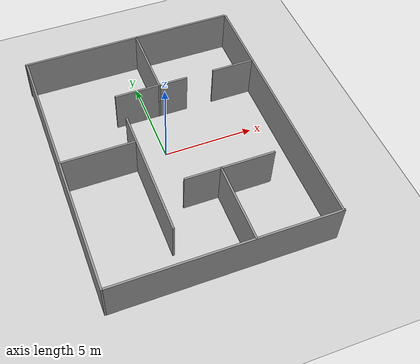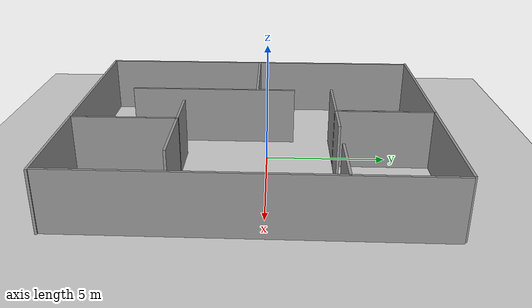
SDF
<sdf version="1.4">
 <world name="default">
  <light name="sun" type="directional">
   <pose>0 0 10 0 -0 0</pose>
   <diffuse>0.8 0.8 0.8 1</diffuse>
   <specular>0.2 0.2 0.2 1</specular>
   <attenuation>
    <range>1000</range>
    <constant>0.9</constant>
    <linear>0.01</linear>
    <quadratic>0.001</quadratic>
   </attenuation>
   <direction>-0.5 0.1 -0.9</direction>
   <spot><inner_angle>0</inner_angle><outer_angle>0</outer_angle><falloff>0</falloff></spot>
  </light>
  <model name="ground_plane">
   <static>1</static>
   <link name="link">
    <collision name="collision">
     <geometry><plane><normal>0 0 1</normal><size>100 100</size></plane></geometry>
     <surface>
      <contact><collide_bitmask>65535</collide_bitmask></contact>
      <friction><ode><mu>100</mu><mu2>50</mu2></ode></friction>
     </surface>
    </collision>
    <visual name="visual">
     <cast_shadows>0</cast_shadows>
     <geometry><plane><normal>0 0 1</normal><size>100 100</size></plane></geometry>
     <material>
      <script><uri>file://media/materials/scripts/gazebo.material</uri><name>Gazebo/Grey</name></script>
     </material>
    </visual>
   </link>
  </model>
  <gravity>0 0 -9.8</gravity>
  <magnetic_field>6e-06 2.3e-05 -4.2e-05</magnetic_field>
  <atmosphere type="adiabatic"/>
  <physics type="ode">
   <max_step_size>0.001</max_step_size>
   <real_time_factor>1</real_time_factor>
   <real_time_update_rate>1000</real_time_update_rate>
  </physics>
  <scene><ambient>0.4 0.4 0.4 1</ambient><background>0.7 0.7 0.7 1</background><shadows>1</shadows></scene>
  <spherical_coordinates>
   <surface_model>EARTH_WGS84</surface_model>
   <latitude_deg>0</latitude_deg>
   <longitude_deg>0</longitude_deg>
   <elevation>0</elevation>
   <heading_deg>0</heading_deg>
  </spherical_coordinates>
  <model name="House_01">
   <link name="link_1">
    <inertial>
     <mass>1.49681</mass>
     <inertia><ixx>0.780838</ixx><ixy>0</ixy><ixz>0</ixz><iyy>18.6651</iyy><iyz>0</iyz><izz>17.8868</izz></inertia>
    </inertial>
    <pose>0.027802 8.05572 1.25 0 -0 0</pose>
    <visual name="visual">
     <geometry><box><size>11.9745 0.1 2.5</size></box></geometry>
     <material>
      <lighting>1</lighting>
      <script><uri>file://media/materials/scripts/gazebo.material</uri><name>Gazebo/Grey</name></script>
      <shader type="pixel"><normal_map>__default__</normal_map></shader>
      <ambient>0.3 0.3 0.3 1</ambient>
      <diffuse>0.7 0.7 0.7 1</diffuse>
      <specular>0.01 0.01 0.01 1</specular>
      <emissive>0 0 0 1</emissive>
     </material>
    </visual>
    <collision name="collision">
     <geometry><box><size>11.9745 0.1 2.5</size></box></geometry>
     <surface>
      <friction>
       <ode><mu>1</mu><mu2>1</mu2><fdir1>0 0 0</fdir1><slip1>0</slip1><slip2>0</slip2></ode>
       <torsional>
        <coefficient>1</coefficient>
        <patch_radius>0</patch_radius>
        <surface_radius>0</surface_radius>
        <use_patch_radius>1</use_patch_radius>
        <ode><slip>0</slip></ode>
       </torsional>
      </friction>
      <bounce><restitution_coefficient>0</restitution_coefficient><threshold>1e+06</threshold></bounce>
      <contact>
       <collide_without_contact>0</collide_without_contact>
       <collide_without_contact_bitmask>1</collide_without_contact_bitmask>
       <collide_bitmask>1</collide_bitmask>
       <ode>
        <soft_cfm>0</soft_cfm>
        <soft_erp>0.2</soft_erp>
        <kp>1e+13</kp>
        <kd>1</kd>
        <max_vel>0.01</max_vel>
        <min_depth>0</min_depth>
       </ode>
       <bullet>
        <split_impulse>1</split_impulse>
        <split_impulse_penetration_threshold>-0.01</split_impulse_penetration_threshold>
        <soft_cfm>0</soft_cfm>
        <soft_erp>0.2</soft_erp>
        <kp>1e+13</kp>
        <kd>1</kd>
       </bullet>
      </contact>
     </surface>
    </collision>
   </link>
   <link name="link_1_clone">
    <inertial>
     <mass>0.514649</mass>
     <inertia>
      <ixx>0.268475</ixx>
      <ixy>0</ixy>
      <ixz>0</ixz>
      <iyy>0.99504</iyy>
      <iyz>0</iyz>
      <izz>0.727423</izz>
     </inertia>
    </inertial>
    <pose>0.058969 4.07499 1.25 0 -0 0</pose>
    <visual name="visual">
     <geometry><box><size>4.11719 0.1 2.5</size></box></geometry>
     <material>
      <lighting>1</lighting>
      <script><uri>file://media/materials/scripts/gazebo.material</uri><name>Gazebo/Grey</name></script>
      <shader type="pixel"><normal_map>__default__</normal_map></shader>
      <ambient>0.3 0.3 0.3 1</ambient>
      <diffuse>0.7 0.7 0.7 1</diffuse>
      <specular>0.01 0.01 0.01 1</specular>
      <emissive>0 0 0 1</emissive>
     </material>
    </visual>
    <collision name="collision">
     <geometry><box><size>4.11719 0.1 2.5</size></box></geometry>
     <surface>
      <friction>
       <ode><mu>1</mu><mu2>1</mu2><fdir1>0 0 0</fdir1><slip1>0</slip1><slip2>0</slip2></ode>
       <torsional>
        <coefficient>1</coefficient>
        <patch_radius>0</patch_radius>
        <surface_radius>0</surface_radius>
        <use_patch_radius>1</use_patch_radius>
        <ode><slip>0</slip></ode>
       </torsional>
      </friction>
      <bounce><restitution_coefficient>0</restitution_coefficient><threshold>1e+06</threshold></bounce>
      <contact>
       <collide_without_contact>0</collide_without_contact>
       <collide_without_contact_bitmask>1</collide_without_contact_bitmask>
       <collide_bitmask>1</collide_bitmask>
       <ode>
        <soft_cfm>0</soft_cfm>
        <soft_erp>0.2</soft_erp>
        <kp>1e+13</kp>
        <kd>1</kd>
        <max_vel>0.01</max_vel>
        <min_depth>0</min_depth>
       </ode>
       <bullet>
        <split_impulse>1</split_impulse>
        <split_impulse_penetration_threshold>-0.01</split_impulse_penetration_threshold>
        <soft_cfm>0</soft_cfm>
        <soft_erp>0.2</soft_erp>
        <kp>1e+13</kp>
        <kd>1</kd>
       </bullet>
      </contact>
     </surface>
    </collision>
   </link>
   <link name="link_1_clone_0">
    <inertial>
     <mass>1.49681</mass>
     <inertia><ixx>0.780838</ixx><ixy>0</ixy><ixz>0</ixz><iyy>18.6651</iyy><iyz>0</iyz><izz>17.8868</izz></inertia>
    </inertial>
    <pose>0.067238 -6.52906 1.25 0 -0 0</pose>
    <visual name="visual">
     <geometry><box><size>11.9745 0.1 2.5</size></box></geometry>
     <material>
      <lighting>1</lighting>
      <script><uri>file://media/materials/scripts/gazebo.material</uri><name>Gazebo/Grey</name></script>
      <shader type="pixel"><normal_map>__default__</normal_map></shader>
      <ambient>0.3 0.3 0.3 1</ambient>
      <diffuse>0.7 0.7 0.7 1</diffuse>
      <specular>0.01 0.01 0.01 1</specular>
      <emissive>0 0 0 1</emissive>
     </material>
    </visual>
    <collision name="collision">
     <geometry><box><size>11.9745 0.1 2.5</size></box></geometry>
     <surface>
      <friction>
       <ode><mu>1</mu><mu2>1</mu2><fdir1>0 0 0</fdir1><slip1>0</slip1><slip2>0</slip2></ode>
       <torsional>
        <coefficient>1</coefficient>
        <patch_radius>0</patch_radius>
        <surface_radius>0</surface_radius>
        <use_patch_radius>1</use_patch_radius>
        <ode><slip>0</slip></ode>
       </torsional>
      </friction>
      <bounce><restitution_coefficient>0</restitution_coefficient><threshold>1e+06</threshold></bounce>
      <contact>
       <collide_without_contact>0</collide_without_contact>
       <collide_without_contact_bitmask>1</collide_without_contact_bitmask>
       <collide_bitmask>1</collide_bitmask>
       <ode>
        <soft_cfm>0</soft_cfm>
        <soft_erp>0.2</soft_erp>
        <kp>1e+13</kp>
        <kd>1</kd>
        <max_vel>0.01</max_vel>
        <min_depth>0</min_depth>
       </ode>
       <bullet>
        <split_impulse>1</split_impulse>
        <split_impulse_penetration_threshold>-0.01</split_impulse_penetration_threshold>
        <soft_cfm>0</soft_cfm>
        <soft_erp>0.2</soft_erp>
        <kp>1e+13</kp>
        <kd>1</kd>
       </bullet>
      </contact>
     </surface>
    </collision>
   </link>
   <link name="link_1_clone_clone">
    <inertial>
     <mass>0.509253</mass>
     <inertia>
      <ixx>0.26566</ixx>
      <ixy>0</ixy>
      <ixz>0</ixz>
      <iyy>0.969603</iyy>
      <iyz>0</iyz>
      <izz>0.704791</izz>
     </inertia>
    </inertial>
    <pose>0.518645 6.05664 1.25 0 -0 1.5641</pose>
    <visual name="visual">
     <geometry><box><size>4.07402 0.1 2.5</size></box></geometry>
     <material>
      <lighting>1</lighting>
      <script><uri>file://media/materials/scripts/gazebo.material</uri><name>Gazebo/Grey</name></script>
      <shader type="pixel"><normal_map>__default__</normal_map></shader>
      <ambient>0.3 0.3 0.3 1</ambient>
      <diffuse>0.7 0.7 0.7 1</diffuse>
      <specular>0.01 0.01 0.01 1</specular>
      <emissive>0 0 0 1</emissive>
     </material>
    </visual>
    <collision name="collision">
     <geometry><box><size>4.07402 0.1 2.5</size></box></geometry>
     <surface>
      <friction>
       <ode><mu>1</mu><mu2>1</mu2><fdir1>0 0 0</fdir1><slip1>0</slip1><slip2>0</slip2></ode>
       <torsional>
        <coefficient>1</coefficient>
        <patch_radius>0</patch_radius>
        <surface_radius>0</surface_radius>
        <use_patch_radius>1</use_patch_radius>
        <ode><slip>0</slip></ode>
       </torsional>
      </friction>
      <bounce><restitution_coefficient>0</restitution_coefficient><threshold>1e+06</threshold></bounce>
      <contact>
       <collide_without_contact>0</collide_without_contact>
       <collide_without_contact_bitmask>1</collide_without_contact_bitmask>
       <collide_bitmask>1</collide_bitmask>
       <ode>
        <soft_cfm>0</soft_cfm>
        <soft_erp>0.2</soft_erp>
        <kp>1e+13</kp>
        <kd>1</kd>
        <max_vel>0.01</max_vel>
        <min_depth>0</min_depth>
       </ode>
       <bullet>
        <split_impulse>1</split_impulse>
        <split_impulse_penetration_threshold>-0.01</split_impulse_penetration_threshold>
        <soft_cfm>0</soft_cfm>
        <soft_erp>0.2</soft_erp>
        <kp>1e+13</kp>
        <kd>1</kd>
       </bullet>
      </contact>
     </surface>
    </collision>
   </link>
   <link name="link_1_clone_clone_0">
    <inertial>
     <mass>0.514649</mass>
     <inertia>
      <ixx>0.268475</ixx>
      <ixy>0</ixy>
      <ixz>0</ixz>
      <iyy>0.99504</iyy>
      <iyz>0</iyz>
      <izz>0.727423</izz>
     </inertia>
    </inertial>
    <pose>-3.8974 0.806669 1.25 0 -0 0</pose>
    <visual name="visual">
     <geometry><box><size>4.11719 0.1 2.5</size></box></geometry>
     <material>
      <lighting>1</lighting>
      <script><uri>file://media/materials/scripts/gazebo.material</uri><name>Gazebo/Grey</name></script>
      <shader type="pixel"><normal_map>__default__</normal_map></shader>
      <ambient>0.3 0.3 0.3 1</ambient>
      <diffuse>0.7 0.7 0.7 1</diffuse>
      <specular>0.01 0.01 0.01 1</specular>
      <emissive>0 0 0 1</emissive>
     </material>
    </visual>
    <collision name="collision">
     <geometry><box><size>4.11719 0.1 2.5</size></box></geometry>
     <surface>
      <friction>
       <ode><mu>1</mu><mu2>1</mu2><fdir1>0 0 0</fdir1><slip1>0</slip1><slip2>0</slip2></ode>
       <torsional>
        <coefficient>1</coefficient>
        <patch_radius>0</patch_radius>
        <surface_radius>0</surface_radius>
        <use_patch_radius>1</use_patch_radius>
        <ode><slip>0</slip></ode>
       </torsional>
      </friction>
      <bounce><restitution_coefficient>0</restitution_coefficient><threshold>1e+06</threshold></bounce>
      <contact>
       <collide_without_contact>0</collide_without_contact>
       <collide_without_contact_bitmask>1</collide_without_contact_bitmask>
       <collide_bitmask>1</collide_bitmask>
       <ode>
        <soft_cfm>0</soft_cfm>
        <soft_erp>0.2</soft_erp>
        <kp>1e+13</kp>
        <kd>1</kd>
        <max_vel>0.01</max_vel>
        <min_depth>0</min_depth>
       </ode>
       <bullet>
        <split_impulse>1</split_impulse>
        <split_impulse_penetration_threshold>-0.01</split_impulse_penetration_threshold>
        <soft_cfm>0</soft_cfm>
        <soft_erp>0.2</soft_erp>
        <kp>1e+13</kp>
        <kd>1</kd>
       </bullet>
      </contact>
     </surface>
    </collision>
   </link>
   <link name="link_1_clone_clone_2">
    <inertial>
     <mass>0.304237</mass>
     <inertia><ixx>0.15871</ixx><ixy>0</ixy><ixz>0</ixz><iyy>0.308643</iyy><iyz>0</iyz><izz>0.15044</izz></inertia>
    </inertial>
    <pose>4.86186 4.07451 1.25 0 -0 0</pose>
    <visual name="visual">
     <geometry><box><size>2.43389 0.1 2.5</size></box></geometry>
     <material>
      <lighting>1</lighting>
      <script><uri>file://media/materials/scripts/gazebo.material</uri><name>Gazebo/Grey</name></script>
      <shader type="pixel"><normal_map>__default__</normal_map></shader>
      <ambient>0.3 0.3 0.3 1</ambient>
      <diffuse>0.7 0.7 0.7 1</diffuse>
      <specular>0.01 0.01 0.01 1</specular>
      <emissive>0 0 0 1</emissive>
     </material>
    </visual>
    <collision name="collision">
     <geometry><box><size>2.43389 0.1 2.5</size></box></geometry>
     <surface>
      <friction>
       <ode><mu>1</mu><mu2>1</mu2><fdir1>0 0 0</fdir1><slip1>0</slip1><slip2>0</slip2></ode>
       <torsional>
        <coefficient>1</coefficient>
        <patch_radius>0</patch_radius>
        <surface_radius>0</surface_radius>
        <use_patch_radius>1</use_patch_radius>
        <ode><slip>0</slip></ode>
       </torsional>
      </friction>
      <bounce><restitution_coefficient>0</restitution_coefficient><threshold>1e+06</threshold></bounce>
      <contact>
       <collide_without_contact>0</collide_without_contact>
       <collide_without_contact_bitmask>1</collide_without_contact_bitmask>
       <collide_bitmask>1</collide_bitmask>
       <ode>
        <soft_cfm>0</soft_cfm>
        <soft_erp>0.2</soft_erp>
        <kp>1e+13</kp>
        <kd>1</kd>
        <max_vel>0.01</max_vel>
        <min_depth>0</min_depth>
       </ode>
       <bullet>
        <split_impulse>1</split_impulse>
        <split_impulse_penetration_threshold>-0.01</split_impulse_penetration_threshold>
        <soft_cfm>0</soft_cfm>
        <soft_erp>0.2</soft_erp>
        <kp>1e+13</kp>
        <kd>1</kd>
       </bullet>
      </contact>
     </surface>
    </collision>
   </link>
   <link name="link_1_clone_clone_3">
    <inertial>
     <mass>0.613294</mass>
     <inertia><ixx>0.319935</ixx><ixy>0</ixy><ixz>0</ixz><iyy>1.54971</iyy><iyz>0</iyz><izz>1.23079</izz></inertia>
    </inertial>
    <pose>1.97764 -2.24987 1.25 0 -0 0</pose>
    <visual name="visual">
     <geometry><box><size>4.90635 0.1 2.5</size></box></geometry>
     <material>
      <lighting>1</lighting>
      <script><uri>file://media/materials/scripts/gazebo.material</uri><name>Gazebo/Grey</name></script>
      <shader type="pixel"><normal_map>__default__</normal_map></shader>
      <ambient>0.3 0.3 0.3 1</ambient>
      <diffuse>0.7 0.7 0.7 1</diffuse>
      <specular>0.01 0.01 0.01 1</specular>
      <emissive>0 0 0 1</emissive>
     </material>
    </visual>
    <collision name="collision">
     <geometry><box><size>4.90635 0.1 2.5</size></box></geometry>
     <surface>
      <friction>
       <ode><mu>1</mu><mu2>1</mu2><fdir1>0 0 0</fdir1><slip1>0</slip1><slip2>0</slip2></ode>
       <torsional>
        <coefficient>1</coefficient>
        <patch_radius>0</patch_radius>
        <surface_radius>0</surface_radius>
        <use_patch_radius>1</use_patch_radius>
        <ode><slip>0</slip></ode>
       </torsional>
      </friction>
      <bounce><restitution_coefficient>0</restitution_coefficient><threshold>1e+06</threshold></bounce>
      <contact>
       <collide_without_contact>0</collide_without_contact>
       <collide_without_contact_bitmask>1</collide_without_contact_bitmask>
       <collide_bitmask>1</collide_bitmask>
       <ode>
        <soft_cfm>0</soft_cfm>
        <soft_erp>0.2</soft_erp>
        <kp>1e+13</kp>
        <kd>1</kd>
        <max_vel>0.01</max_vel>
        <min_depth>0</min_depth>
       </ode>
       <bullet>
        <split_impulse>1</split_impulse>
        <split_impulse_penetration_threshold>-0.01</split_impulse_penetration_threshold>
        <soft_cfm>0</soft_cfm>
        <soft_erp>0.2</soft_erp>
        <kp>1e+13</kp>
        <kd>1</kd>
       </bullet>
      </contact>
     </surface>
    </collision>
   </link>
   <link name="link_1_clone_clone_clone_0">
    <inertial>
     <mass>0.895848</mass>
     <inertia><ixx>0.467334</ixx><ixy>0</ixy><ixz>0</ixz><iyy>4.30101</iyy><iyz>0</iyz><izz>3.83517</izz></inertia>
    </inertial>
    <pose>-1.89938 -1.13559 1.25 0 -0 1.5641</pose>
    <visual name="visual">
     <geometry><box><size>7.16677 0.1 2.5</size></box></geometry>
     <material>
      <lighting>1</lighting>
      <script><uri>file://media/materials/scripts/gazebo.material</uri><name>Gazebo/Grey</name></script>
      <shader type="pixel"><normal_map>__default__</normal_map></shader>
      <ambient>0.3 0.3 0.3 1</ambient>
      <diffuse>0.7 0.7 0.7 1</diffuse>
      <specular>0.01 0.01 0.01 1</specular>
      <emissive>0 0 0 1</emissive>
     </material>
    </visual>
    <collision name="collision">
     <geometry><box><size>7.16677 0.1 2.5</size></box></geometry>
     <surface>
      <friction>
       <ode><mu>1</mu><mu2>1</mu2><fdir1>0 0 0</fdir1><slip1>0</slip1><slip2>0</slip2></ode>
       <torsional>
        <coefficient>1</coefficient>
        <patch_radius>0</patch_radius>
        <surface_radius>0</surface_radius>
        <use_patch_radius>1</use_patch_radius>
        <ode><slip>0</slip></ode>
       </torsional>
      </friction>
      <bounce><restitution_coefficient>0</restitution_coefficient><threshold>1e+06</threshold></bounce>
      <contact>
       <collide_without_contact>0</collide_without_contact>
       <collide_without_contact_bitmask>1</collide_without_contact_bitmask>
       <collide_bitmask>1</collide_bitmask>
       <ode>
        <soft_cfm>0</soft_cfm>
        <soft_erp>0.2</soft_erp>
        <kp>1e+13</kp>
        <kd>1</kd>
        <max_vel>0.01</max_vel>
        <min_depth>0</min_depth>
       </ode>
       <bullet>
        <split_impulse>1</split_impulse>
        <split_impulse_penetration_threshold>-0.01</split_impulse_penetration_threshold>
        <soft_cfm>0</soft_cfm>
        <soft_erp>0.2</soft_erp>
        <kp>1e+13</kp>
        <kd>1</kd>
       </bullet>
      </contact>
     </surface>
    </collision>
   </link>
   <link name="link_1_clone_clone_clone_0_clone">
    <inertial>
     <mass>0.542755</mass>
     <inertia>
      <ixx>0.283137</ixx>
      <ixy>0</ixy>
      <ixz>0</ixz>
      <iyy>1.13541</iyy>
      <iyz>0</iyz>
      <izz>0.853175</izz>
     </inertia>
    </inertial>
    <pose>1.48241 -4.36636 1.25 0 -0 1.5641</pose>
    <visual name="visual">
     <geometry><box><size>4.34203 0.1 2.5</size></box></geometry>
     <material>
      <lighting>1</lighting>
      <script><uri>file://media/materials/scripts/gazebo.material</uri><name>Gazebo/Grey</name></script>
      <shader type="pixel"><normal_map>__default__</normal_map></shader>
      <ambient>0.3 0.3 0.3 1</ambient>
      <diffuse>0.7 0.7 0.7 1</diffuse>
      <specular>0.01 0.01 0.01 1</specular>
      <emissive>0 0 0 1</emissive>
     </material>
    </visual>
    <collision name="collision">
     <geometry><box><size>4.34203 0.1 2.5</size></box></geometry>
     <surface>
      <friction>
       <ode><mu>1</mu><mu2>1</mu2><fdir1>0 0 0</fdir1><slip1>0</slip1><slip2>0</slip2></ode>
       <torsional>
        <coefficient>1</coefficient>
        <patch_radius>0</patch_radius>
        <surface_radius>0</surface_radius>
        <use_patch_radius>1</use_patch_radius>
        <ode><slip>0</slip></ode>
       </torsional>
      </friction>
      <bounce><restitution_coefficient>0</restitution_coefficient><threshold>1e+06</threshold></bounce>
      <contact>
       <collide_without_contact>0</collide_without_contact>
       <collide_without_contact_bitmask>1</collide_without_contact_bitmask>
       <collide_bitmask>1</collide_bitmask>
       <ode>
        <soft_cfm>0</soft_cfm>
        <soft_erp>0.2</soft_erp>
        <kp>1e+13</kp>
        <kd>1</kd>
        <max_vel>0.01</max_vel>
        <min_depth>0</min_depth>
       </ode>
       <bullet>
        <split_impulse>1</split_impulse>
        <split_impulse_penetration_threshold>-0.01</split_impulse_penetration_threshold>
        <soft_cfm>0</soft_cfm>
        <soft_erp>0.2</soft_erp>
        <kp>1e+13</kp>
        <kd>1</kd>
       </bullet>
      </contact>
     </surface>
    </collision>
   </link>
   <link name="link_1_clone_clone_clone_clone">
    <inertial>
     <mass>1.82084</mass>
     <inertia><ixx>0.949874</ixx><ixy>0</ixy><ixz>0</ixz><iyy>33.1454</iyy><iyz>0</iyz><izz>32.1986</izz></inertia>
    </inertial>
    <pose>6.00792 0.730406 1.25 0 -0 1.5641</pose>
    <visual name="visual">
     <geometry><box><size>14.5667 0.1 2.5</size></box></geometry>
     <material>
      <lighting>1</lighting>
      <script><uri>file://media/materials/scripts/gazebo.material</uri><name>Gazebo/Grey</name></script>
      <shader type="pixel"><normal_map>__default__</normal_map></shader>
      <ambient>0.3 0.3 0.3 1</ambient>
      <diffuse>0.7 0.7 0.7 1</diffuse>
      <specular>0.01 0.01 0.01 1</specular>
      <emissive>0 0 0 1</emissive>
     </material>
    </visual>
    <collision name="collision">
     <geometry><box><size>14.5667 0.1 2.5</size></box></geometry>
     <surface>
      <friction>
       <ode><mu>1</mu><mu2>1</mu2><fdir1>0 0 0</fdir1><slip1>0</slip1><slip2>0</slip2></ode>
       <torsional>
        <coefficient>1</coefficient>
        <patch_radius>0</patch_radius>
        <surface_radius>0</surface_radius>
        <use_patch_radius>1</use_patch_radius>
        <ode><slip>0</slip></ode>
       </torsional>
      </friction>
      <bounce><restitution_coefficient>0</restitution_coefficient><threshold>1e+06</threshold></bounce>
      <contact>
       <collide_without_contact>0</collide_without_contact>
       <collide_without_contact_bitmask>1</collide_without_contact_bitmask>
       <collide_bitmask>1</collide_bitmask>
       <ode>
        <soft_cfm>0</soft_cfm>
        <soft_erp>0.2</soft_erp>
        <kp>1e+13</kp>
        <kd>1</kd>
        <max_vel>0.01</max_vel>
        <min_depth>0</min_depth>
       </ode>
       <bullet>
        <split_impulse>1</split_impulse>
        <split_impulse_penetration_threshold>-0.01</split_impulse_penetration_threshold>
        <soft_cfm>0</soft_cfm>
        <soft_erp>0.2</soft_erp>
        <kp>1e+13</kp>
        <kd>1</kd>
       </bullet>
      </contact>
     </surface>
    </collision>
   </link>
   <link name="link_1_clone_clone_clone_clone_clone">
    <inertial>
     <mass>1.82084</mass>
     <inertia><ixx>0.949874</ixx><ixy>0</ixy><ixz>0</ixz><iyy>33.1454</iyy><iyz>0</iyz><izz>32.1986</izz></inertia>
    </inertial>
    <pose>-5.91379 0.712719 1.25 0 -0 1.5641</pose>
    <visual name="visual">
     <geometry><box><size>14.5667 0.1 2.5</size></box></geometry>
     <material>
      <lighting>1</lighting>
      <script><uri>file://media/materials/scripts/gazebo.material</uri><name>Gazebo/Grey</name></script>
      <shader type="pixel"><normal_map>__default__</normal_map></shader>
      <ambient>0.3 0.3 0.3 1</ambient>
      <diffuse>0.7 0.7 0.7 1</diffuse>
      <specular>0.01 0.01 0.01 1</specular>
      <emissive>0 0 0 1</emissive>
     </material>
    </visual>
    <collision name="collision">
     <geometry><box><size>14.5667 0.1 2.5</size></box></geometry>
     <surface>
      <friction>
       <ode><mu>1</mu><mu2>1</mu2><fdir1>0 0 0</fdir1><slip1>0</slip1><slip2>0</slip2></ode>
       <torsional>
        <coefficient>1</coefficient>
        <patch_radius>0</patch_radius>
        <surface_radius>0</surface_radius>
        <use_patch_radius>1</use_patch_radius>
        <ode><slip>0</slip></ode>
       </torsional>
      </friction>
      <bounce><restitution_coefficient>0</restitution_coefficient><threshold>1e+06</threshold></bounce>
      <contact>
       <collide_without_contact>0</collide_without_contact>
       <collide_without_contact_bitmask>1</collide_without_contact_bitmask>
       <collide_bitmask>1</collide_bitmask>
       <ode>
        <soft_cfm>0</soft_cfm>
        <soft_erp>0.2</soft_erp>
        <kp>1e+13</kp>
        <kd>1</kd>
        <max_vel>0.01</max_vel>
        <min_depth>0</min_depth>
       </ode>
       <bullet>
        <split_impulse>1</split_impulse>
        <split_impulse_penetration_threshold>-0.01</split_impulse_penetration_threshold>
        <soft_cfm>0</soft_cfm>
        <soft_erp>0.2</soft_erp>
        <kp>1e+13</kp>
        <kd>1</kd>
       </bullet>
      </contact>
     </surface>
    </collision>
   </link>
   <static>0</static>
   <pose>0.140215 -1.28518 -1e-05 1e-06 1e-06 7e-06</pose>
  </model>
 </world>
</sdf>
